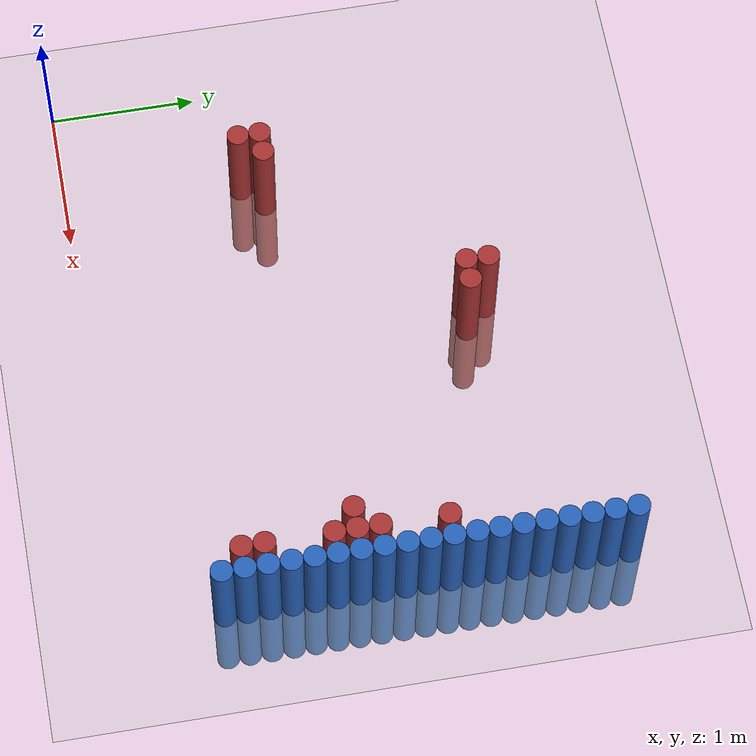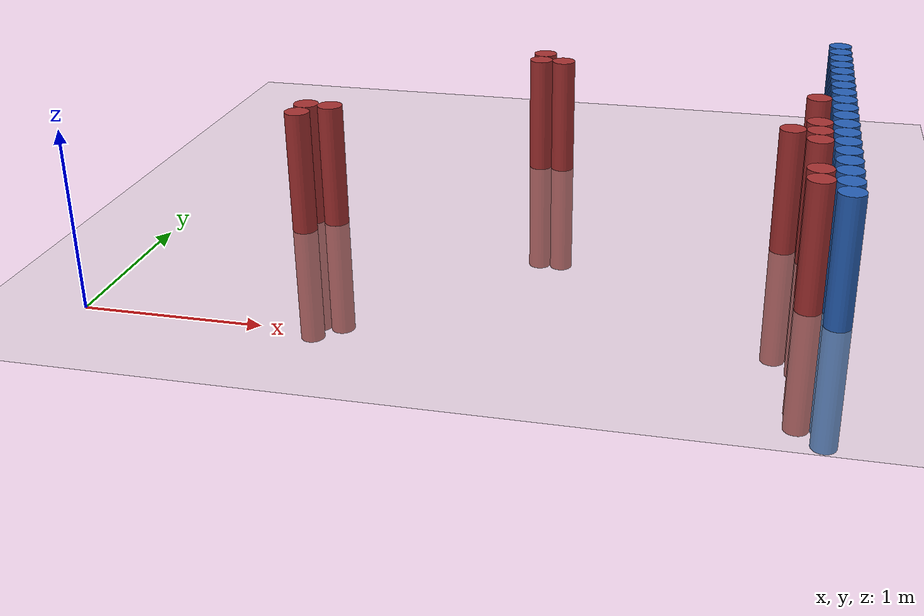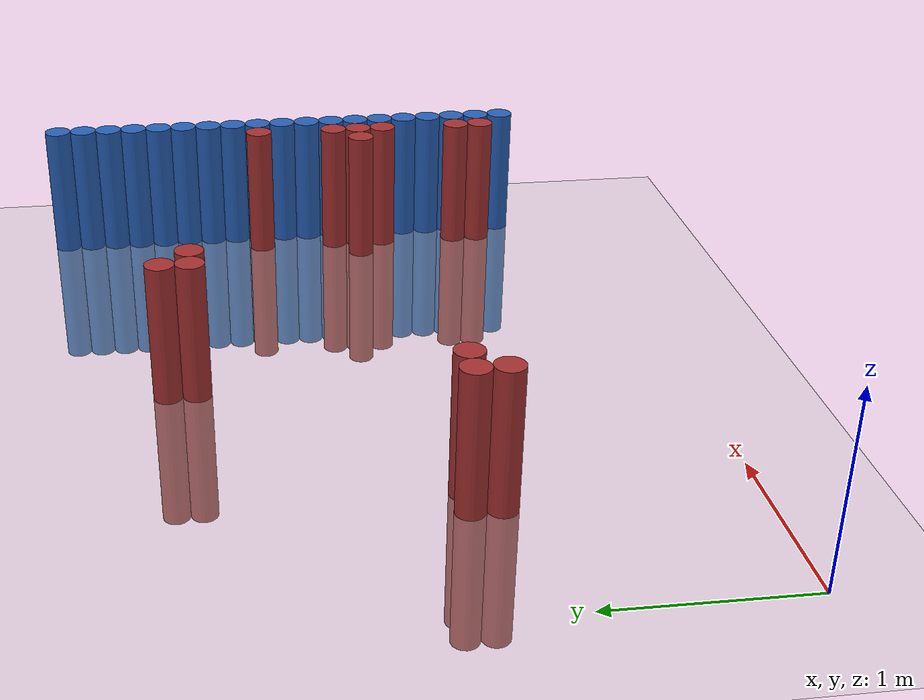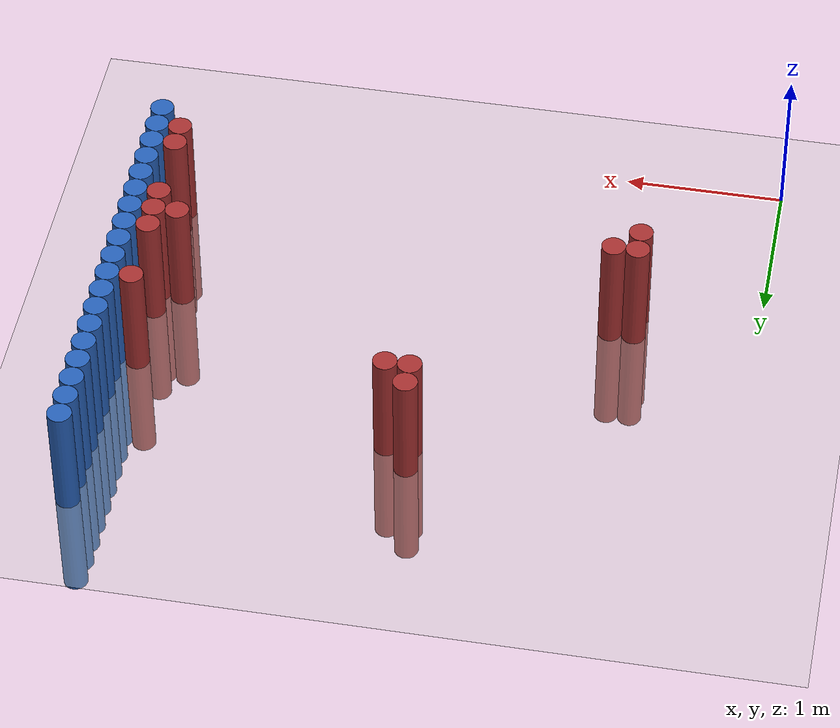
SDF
<sdf version="1.6">
 <world name="default">
  <model name="ground_plane">
   <static>1</static>
   <link name="link">
    <collision name="collision">
     <geometry><plane><normal>0 0 1</normal><size>100 100</size></plane></geometry>
     <surface><friction><ode><mu>100</mu><mu2>50</mu2></ode></friction></surface>
    </collision>
    <visual name="visual">
     <cast_shadows>0</cast_shadows>
     <geometry><plane><normal>0 0 1</normal><size>100 100</size></plane></geometry>
     <material>
      <script><uri>file://media/materials/scripts/gazebo.material</uri><name>Gazebo/Grey</name></script>
     </material>
    </visual>
   </link>
  </model>
  <model name="unit_cylinder_124">
   <static>1</static>
   <pose>3.925000 0.775000 0.000000 0.000000 0.000000 0.000000</pose>
   <link name="link">
    <inertial>
     <mass>1</mass>
     <inertia><ixx>0.145833</ixx><ixy>0</ixy><ixz>0</ixz><iyy>0.145833</iyy><iyz>0</iyz><izz>0.125</izz></inertia>
    </inertial>
    <collision name="collision">
     <geometry><cylinder><radius>0.075000</radius><length>1.5</length></cylinder></geometry>
    </collision>
    <visual name="visual">
     <geometry><cylinder><radius>0.075000</radius><length>1.5</length></cylinder></geometry>
     <material>
      <ambient>0.152000 0.379000 0.720000 1</ambient>
      <diffuse>0.152000 0.379000 0.720000 1</diffuse>
     </material>
     <material>
      <script><name>Gazebo/Grey</name><uri>file://media/materials/scripts/gazebo.material</uri></script>
     </material>
    </visual>
   </link>
  </model>
  <model name="unit_cylinder_126">
   <static>1</static>
   <pose>3.925000 0.925000 0.000000 0.000000 0.000000 0.000000</pose>
   <link name="link">
    <inertial>
     <mass>1</mass>
     <inertia><ixx>0.145833</ixx><ixy>0</ixy><ixz>0</ixz><iyy>0.145833</iyy><iyz>0</iyz><izz>0.125</izz></inertia>
    </inertial>
    <collision name="collision">
     <geometry><cylinder><radius>0.075000</radius><length>1.5</length></cylinder></geometry>
    </collision>
    <visual name="visual">
     <geometry><cylinder><radius>0.075000</radius><length>1.5</length></cylinder></geometry>
     <material>
      <ambient>0.152000 0.379000 0.720000 1</ambient>
      <diffuse>0.152000 0.379000 0.720000 1</diffuse>
     </material>
     <material>
      <script><name>Gazebo/Grey</name><uri>file://media/materials/scripts/gazebo.material</uri></script>
     </material>
    </visual>
   </link>
  </model>
  <model name="unit_cylinder_128">
   <static>1</static>
   <pose>3.925000 1.075000 0.000000 0.000000 0.000000 0.000000</pose>
   <link name="link">
    <inertial>
     <mass>1</mass>
     <inertia><ixx>0.145833</ixx><ixy>0</ixy><ixz>0</ixz><iyy>0.145833</iyy><iyz>0</iyz><izz>0.125</izz></inertia>
    </inertial>
    <collision name="collision">
     <geometry><cylinder><radius>0.075000</radius><length>1.5</length></cylinder></geometry>
    </collision>
    <visual name="visual">
     <geometry><cylinder><radius>0.075000</radius><length>1.5</length></cylinder></geometry>
     <material>
      <ambient>0.152000 0.379000 0.720000 1</ambient>
      <diffuse>0.152000 0.379000 0.720000 1</diffuse>
     </material>
     <material>
      <script><name>Gazebo/Grey</name><uri>file://media/materials/scripts/gazebo.material</uri></script>
     </material>
    </visual>
   </link>
  </model>
  <model name="unit_cylinder_130">
   <static>1</static>
   <pose>3.925000 1.225000 0.000000 0.000000 0.000000 0.000000</pose>
   <link name="link">
    <inertial>
     <mass>1</mass>
     <inertia><ixx>0.145833</ixx><ixy>0</ixy><ixz>0</ixz><iyy>0.145833</iyy><iyz>0</iyz><izz>0.125</izz></inertia>
    </inertial>
    <collision name="collision">
     <geometry><cylinder><radius>0.075000</radius><length>1.5</length></cylinder></geometry>
    </collision>
    <visual name="visual">
     <geometry><cylinder><radius>0.075000</radius><length>1.5</length></cylinder></geometry>
     <material>
      <ambient>0.152000 0.379000 0.720000 1</ambient>
      <diffuse>0.152000 0.379000 0.720000 1</diffuse>
     </material>
     <material>
      <script><name>Gazebo/Grey</name><uri>file://media/materials/scripts/gazebo.material</uri></script>
     </material>
    </visual>
   </link>
  </model>
  <model name="unit_cylinder_132">
   <static>1</static>
   <pose>3.925000 1.375000 0.000000 0.000000 0.000000 0.000000</pose>
   <link name="link">
    <inertial>
     <mass>1</mass>
     <inertia><ixx>0.145833</ixx><ixy>0</ixy><ixz>0</ixz><iyy>0.145833</iyy><iyz>0</iyz><izz>0.125</izz></inertia>
    </inertial>
    <collision name="collision">
     <geometry><cylinder><radius>0.075000</radius><length>1.5</length></cylinder></geometry>
    </collision>
    <visual name="visual">
     <geometry><cylinder><radius>0.075000</radius><length>1.5</length></cylinder></geometry>
     <material>
      <ambient>0.152000 0.379000 0.720000 1</ambient>
      <diffuse>0.152000 0.379000 0.720000 1</diffuse>
     </material>
     <material>
      <script><name>Gazebo/Grey</name><uri>file://media/materials/scripts/gazebo.material</uri></script>
     </material>
    </visual>
   </link>
  </model>
  <model name="unit_cylinder_134">
   <static>1</static>
   <pose>3.925000 1.525000 0.000000 0.000000 0.000000 0.000000</pose>
   <link name="link">
    <inertial>
     <mass>1</mass>
     <inertia><ixx>0.145833</ixx><ixy>0</ixy><ixz>0</ixz><iyy>0.145833</iyy><iyz>0</iyz><izz>0.125</izz></inertia>
    </inertial>
    <collision name="collision">
     <geometry><cylinder><radius>0.075000</radius><length>1.5</length></cylinder></geometry>
    </collision>
    <visual name="visual">
     <geometry><cylinder><radius>0.075000</radius><length>1.5</length></cylinder></geometry>
     <material>
      <ambient>0.152000 0.379000 0.720000 1</ambient>
      <diffuse>0.152000 0.379000 0.720000 1</diffuse>
     </material>
     <material>
      <script><name>Gazebo/Grey</name><uri>file://media/materials/scripts/gazebo.material</uri></script>
     </material>
    </visual>
   </link>
  </model>
  <model name="unit_cylinder_136">
   <static>1</static>
   <pose>3.925000 1.675000 0.000000 0.000000 0.000000 0.000000</pose>
   <link name="link">
    <inertial>
     <mass>1</mass>
     <inertia><ixx>0.145833</ixx><ixy>0</ixy><ixz>0</ixz><iyy>0.145833</iyy><iyz>0</iyz><izz>0.125</izz></inertia>
    </inertial>
    <collision name="collision">
     <geometry><cylinder><radius>0.075000</radius><length>1.5</length></cylinder></geometry>
    </collision>
    <visual name="visual">
     <geometry><cylinder><radius>0.075000</radius><length>1.5</length></cylinder></geometry>
     <material>
      <ambient>0.152000 0.379000 0.720000 1</ambient>
      <diffuse>0.152000 0.379000 0.720000 1</diffuse>
     </material>
     <material>
      <script><name>Gazebo/Grey</name><uri>file://media/materials/scripts/gazebo.material</uri></script>
     </material>
    </visual>
   </link>
  </model>
  <model name="unit_cylinder_138">
   <static>1</static>
   <pose>3.925000 1.825000 0.000000 0.000000 0.000000 0.000000</pose>
   <link name="link">
    <inertial>
     <mass>1</mass>
     <inertia><ixx>0.145833</ixx><ixy>0</ixy><ixz>0</ixz><iyy>0.145833</iyy><iyz>0</iyz><izz>0.125</izz></inertia>
    </inertial>
    <collision name="collision">
     <geometry><cylinder><radius>0.075000</radius><length>1.5</length></cylinder></geometry>
    </collision>
    <visual name="visual">
     <geometry><cylinder><radius>0.075000</radius><length>1.5</length></cylinder></geometry>
     <material>
      <ambient>0.152000 0.379000 0.720000 1</ambient>
      <diffuse>0.152000 0.379000 0.720000 1</diffuse>
     </material>
     <material>
      <script><name>Gazebo/Grey</name><uri>file://media/materials/scripts/gazebo.material</uri></script>
     </material>
    </visual>
   </link>
  </model>
  <model name="unit_cylinder_140">
   <static>1</static>
   <pose>3.925000 1.975000 0.000000 0.000000 0.000000 0.000000</pose>
   <link name="link">
    <inertial>
     <mass>1</mass>
     <inertia><ixx>0.145833</ixx><ixy>0</ixy><ixz>0</ixz><iyy>0.145833</iyy><iyz>0</iyz><izz>0.125</izz></inertia>
    </inertial>
    <collision name="collision">
     <geometry><cylinder><radius>0.075000</radius><length>1.5</length></cylinder></geometry>
    </collision>
    <visual name="visual">
     <geometry><cylinder><radius>0.075000</radius><length>1.5</length></cylinder></geometry>
     <material>
      <ambient>0.152000 0.379000 0.720000 1</ambient>
      <diffuse>0.152000 0.379000 0.720000 1</diffuse>
     </material>
     <material>
      <script><name>Gazebo/Grey</name><uri>file://media/materials/scripts/gazebo.material</uri></script>
     </material>
    </visual>
   </link>
  </model>
  <model name="unit_cylinder_142">
   <static>1</static>
   <pose>3.925000 2.125000 0.000000 0.000000 0.000000 0.000000</pose>
   <link name="link">
    <inertial>
     <mass>1</mass>
     <inertia><ixx>0.145833</ixx><ixy>0</ixy><ixz>0</ixz><iyy>0.145833</iyy><iyz>0</iyz><izz>0.125</izz></inertia>
    </inertial>
    <collision name="collision">
     <geometry><cylinder><radius>0.075000</radius><length>1.5</length></cylinder></geometry>
    </collision>
    <visual name="visual">
     <geometry><cylinder><radius>0.075000</radius><length>1.5</length></cylinder></geometry>
     <material>
      <ambient>0.152000 0.379000 0.720000 1</ambient>
      <diffuse>0.152000 0.379000 0.720000 1</diffuse>
     </material>
     <material>
      <script><name>Gazebo/Grey</name><uri>file://media/materials/scripts/gazebo.material</uri></script>
     </material>
    </visual>
   </link>
  </model>
  <model name="unit_cylinder_144">
   <static>1</static>
   <pose>3.925000 2.275000 0.000000 0.000000 0.000000 0.000000</pose>
   <link name="link">
    <inertial>
     <mass>1</mass>
     <inertia><ixx>0.145833</ixx><ixy>0</ixy><ixz>0</ixz><iyy>0.145833</iyy><iyz>0</iyz><izz>0.125</izz></inertia>
    </inertial>
    <collision name="collision">
     <geometry><cylinder><radius>0.075000</radius><length>1.5</length></cylinder></geometry>
    </collision>
    <visual name="visual">
     <geometry><cylinder><radius>0.075000</radius><length>1.5</length></cylinder></geometry>
     <material>
      <ambient>0.152000 0.379000 0.720000 1</ambient>
      <diffuse>0.152000 0.379000 0.720000 1</diffuse>
     </material>
     <material>
      <script><name>Gazebo/Grey</name><uri>file://media/materials/scripts/gazebo.material</uri></script>
     </material>
    </visual>
   </link>
  </model>
  <model name="unit_cylinder_146">
   <static>1</static>
   <pose>3.925000 2.425000 0.000000 0.000000 0.000000 0.000000</pose>
   <link name="link">
    <inertial>
     <mass>1</mass>
     <inertia><ixx>0.145833</ixx><ixy>0</ixy><ixz>0</ixz><iyy>0.145833</iyy><iyz>0</iyz><izz>0.125</izz></inertia>
    </inertial>
    <collision name="collision">
     <geometry><cylinder><radius>0.075000</radius><length>1.5</length></cylinder></geometry>
    </collision>
    <visual name="visual">
     <geometry><cylinder><radius>0.075000</radius><length>1.5</length></cylinder></geometry>
     <material>
      <ambient>0.152000 0.379000 0.720000 1</ambient>
      <diffuse>0.152000 0.379000 0.720000 1</diffuse>
     </material>
     <material>
      <script><name>Gazebo/Grey</name><uri>file://media/materials/scripts/gazebo.material</uri></script>
     </material>
    </visual>
   </link>
  </model>
  <model name="unit_cylinder_148">
   <static>1</static>
   <pose>3.925000 2.575000 0.000000 0.000000 0.000000 0.000000</pose>
   <link name="link">
    <inertial>
     <mass>1</mass>
     <inertia><ixx>0.145833</ixx><ixy>0</ixy><ixz>0</ixz><iyy>0.145833</iyy><iyz>0</iyz><izz>0.125</izz></inertia>
    </inertial>
    <collision name="collision">
     <geometry><cylinder><radius>0.075000</radius><length>1.5</length></cylinder></geometry>
    </collision>
    <visual name="visual">
     <geometry><cylinder><radius>0.075000</radius><length>1.5</length></cylinder></geometry>
     <material>
      <ambient>0.152000 0.379000 0.720000 1</ambient>
      <diffuse>0.152000 0.379000 0.720000 1</diffuse>
     </material>
     <material>
      <script><name>Gazebo/Grey</name><uri>file://media/materials/scripts/gazebo.material</uri></script>
     </material>
    </visual>
   </link>
  </model>
  <model name="unit_cylinder_150">
   <static>1</static>
   <pose>3.925000 2.725000 0.000000 0.000000 0.000000 0.000000</pose>
   <link name="link">
    <inertial>
     <mass>1</mass>
     <inertia><ixx>0.145833</ixx><ixy>0</ixy><ixz>0</ixz><iyy>0.145833</iyy><iyz>0</iyz><izz>0.125</izz></inertia>
    </inertial>
    <collision name="collision">
     <geometry><cylinder><radius>0.075000</radius><length>1.5</length></cylinder></geometry>
    </collision>
    <visual name="visual">
     <geometry><cylinder><radius>0.075000</radius><length>1.5</length></cylinder></geometry>
     <material>
      <ambient>0.152000 0.379000 0.720000 1</ambient>
      <diffuse>0.152000 0.379000 0.720000 1</diffuse>
     </material>
     <material>
      <script><name>Gazebo/Grey</name><uri>file://media/materials/scripts/gazebo.material</uri></script>
     </material>
    </visual>
   </link>
  </model>
  <model name="unit_cylinder_152">
   <static>1</static>
   <pose>3.925000 2.875000 0.000000 0.000000 0.000000 0.000000</pose>
   <link name="link">
    <inertial>
     <mass>1</mass>
     <inertia><ixx>0.145833</ixx><ixy>0</ixy><ixz>0</ixz><iyy>0.145833</iyy><iyz>0</iyz><izz>0.125</izz></inertia>
    </inertial>
    <collision name="collision">
     <geometry><cylinder><radius>0.075000</radius><length>1.5</length></cylinder></geometry>
    </collision>
    <visual name="visual">
     <geometry><cylinder><radius>0.075000</radius><length>1.5</length></cylinder></geometry>
     <material>
      <ambient>0.152000 0.379000 0.720000 1</ambient>
      <diffuse>0.152000 0.379000 0.720000 1</diffuse>
     </material>
     <material>
      <script><name>Gazebo/Grey</name><uri>file://media/materials/scripts/gazebo.material</uri></script>
     </material>
    </visual>
   </link>
  </model>
  <model name="unit_cylinder_154">
   <static>1</static>
   <pose>3.925000 3.025000 0.000000 0.000000 0.000000 0.000000</pose>
   <link name="link">
    <inertial>
     <mass>1</mass>
     <inertia><ixx>0.145833</ixx><ixy>0</ixy><ixz>0</ixz><iyy>0.145833</iyy><iyz>0</iyz><izz>0.125</izz></inertia>
    </inertial>
    <collision name="collision">
     <geometry><cylinder><radius>0.075000</radius><length>1.5</length></cylinder></geometry>
    </collision>
    <visual name="visual">
     <geometry><cylinder><radius>0.075000</radius><length>1.5</length></cylinder></geometry>
     <material>
      <ambient>0.152000 0.379000 0.720000 1</ambient>
      <diffuse>0.152000 0.379000 0.720000 1</diffuse>
     </material>
     <material>
      <script><name>Gazebo/Grey</name><uri>file://media/materials/scripts/gazebo.material</uri></script>
     </material>
    </visual>
   </link>
  </model>
  <model name="unit_cylinder_156">
   <static>1</static>
   <pose>3.925000 3.175000 0.000000 0.000000 0.000000 0.000000</pose>
   <link name="link">
    <inertial>
     <mass>1</mass>
     <inertia><ixx>0.145833</ixx><ixy>0</ixy><ixz>0</ixz><iyy>0.145833</iyy><iyz>0</iyz><izz>0.125</izz></inertia>
    </inertial>
    <collision name="collision">
     <geometry><cylinder><radius>0.075000</radius><length>1.5</length></cylinder></geometry>
    </collision>
    <visual name="visual">
     <geometry><cylinder><radius>0.075000</radius><length>1.5</length></cylinder></geometry>
     <material>
      <ambient>0.152000 0.379000 0.720000 1</ambient>
      <diffuse>0.152000 0.379000 0.720000 1</diffuse>
     </material>
     <material>
      <script><name>Gazebo/Grey</name><uri>file://media/materials/scripts/gazebo.material</uri></script>
     </material>
    </visual>
   </link>
  </model>
  <model name="unit_cylinder_158">
   <static>1</static>
   <pose>3.925000 3.325000 0.000000 0.000000 0.000000 0.000000</pose>
   <link name="link">
    <inertial>
     <mass>1</mass>
     <inertia><ixx>0.145833</ixx><ixy>0</ixy><ixz>0</ixz><iyy>0.145833</iyy><iyz>0</iyz><izz>0.125</izz></inertia>
    </inertial>
    <collision name="collision">
     <geometry><cylinder><radius>0.075000</radius><length>1.5</length></cylinder></geometry>
    </collision>
    <visual name="visual">
     <geometry><cylinder><radius>0.075000</radius><length>1.5</length></cylinder></geometry>
     <material>
      <ambient>0.152000 0.379000 0.720000 1</ambient>
      <diffuse>0.152000 0.379000 0.720000 1</diffuse>
     </material>
     <material>
      <script><name>Gazebo/Grey</name><uri>file://media/materials/scripts/gazebo.material</uri></script>
     </material>
    </visual>
   </link>
  </model>
  <model name="unit_cylinder_298">
   <static>1</static>
   <pose>0.775000 1.225000 0.000000 0.000000 0.000000 0.000000</pose>
   <link name="link">
    <inertial>
     <mass>1</mass>
     <inertia><ixx>0.145833</ixx><ixy>0</ixy><ixz>0</ixz><iyy>0.145833</iyy><iyz>0</iyz><izz>0.125</izz></inertia>
    </inertial>
    <collision name="collision">
     <geometry><cylinder><radius>0.075000</radius><length>1.5</length></cylinder></geometry>
    </collision>
    <visual name="visual">
     <geometry><cylinder><radius>0.075000</radius><length>1.5</length></cylinder></geometry>
     <material>
      <ambient>0.648000 0.192000 0.192000 1</ambient>
      <diffuse>0.648000 0.192000 0.192000 1</diffuse>
     </material>
     <material>
      <script><name>Gazebo/Grey</name><uri>file://media/materials/scripts/gazebo.material</uri></script>
     </material>
    </visual>
   </link>
  </model>
  <model name="unit_cylinder_299">
   <static>1</static>
   <pose>0.775000 1.375000 0.000000 0.000000 0.000000 0.000000</pose>
   <link name="link">
    <inertial>
     <mass>1</mass>
     <inertia><ixx>0.145833</ixx><ixy>0</ixy><ixz>0</ixz><iyy>0.145833</iyy><iyz>0</iyz><izz>0.125</izz></inertia>
    </inertial>
    <collision name="collision">
     <geometry><cylinder><radius>0.075000</radius><length>1.5</length></cylinder></geometry>
    </collision>
    <visual name="visual">
     <geometry><cylinder><radius>0.075000</radius><length>1.5</length></cylinder></geometry>
     <material>
      <ambient>0.648000 0.192000 0.192000 1</ambient>
      <diffuse>0.648000 0.192000 0.192000 1</diffuse>
     </material>
     <material>
      <script><name>Gazebo/Grey</name><uri>file://media/materials/scripts/gazebo.material</uri></script>
     </material>
    </visual>
   </link>
  </model>
  <model name="unit_cylinder_300">
   <static>1</static>
   <pose>0.925000 1.375000 0.000000 0.000000 0.000000 0.000000</pose>
   <link name="link">
    <inertial>
     <mass>1</mass>
     <inertia><ixx>0.145833</ixx><ixy>0</ixy><ixz>0</ixz><iyy>0.145833</iyy><iyz>0</iyz><izz>0.125</izz></inertia>
    </inertial>
    <collision name="collision">
     <geometry><cylinder><radius>0.075000</radius><length>1.5</length></cylinder></geometry>
    </collision>
    <visual name="visual">
     <geometry><cylinder><radius>0.075000</radius><length>1.5</length></cylinder></geometry>
     <material>
      <ambient>0.648000 0.192000 0.192000 1</ambient>
      <diffuse>0.648000 0.192000 0.192000 1</diffuse>
     </material>
     <material>
      <script><name>Gazebo/Grey</name><uri>file://media/materials/scripts/gazebo.material</uri></script>
     </material>
    </visual>
   </link>
  </model>
  <model name="unit_cylinder_309">
   <static>1</static>
   <pose>1.975000 2.575000 0.000000 0.000000 0.000000 0.000000</pose>
   <link name="link">
    <inertial>
     <mass>1</mass>
     <inertia><ixx>0.145833</ixx><ixy>0</ixy><ixz>0</ixz><iyy>0.145833</iyy><iyz>0</iyz><izz>0.125</izz></inertia>
    </inertial>
    <collision name="collision">
     <geometry><cylinder><radius>0.075000</radius><length>1.5</length></cylinder></geometry>
    </collision>
    <visual name="visual">
     <geometry><cylinder><radius>0.075000</radius><length>1.5</length></cylinder></geometry>
     <material>
      <ambient>0.648000 0.192000 0.192000 1</ambient>
      <diffuse>0.648000 0.192000 0.192000 1</diffuse>
     </material>
     <material>
      <script><name>Gazebo/Grey</name><uri>file://media/materials/scripts/gazebo.material</uri></script>
     </material>
    </visual>
   </link>
  </model>
  <model name="unit_cylinder_310">
   <static>1</static>
   <pose>1.975000 2.725000 0.000000 0.000000 0.000000 0.000000</pose>
   <link name="link">
    <inertial>
     <mass>1</mass>
     <inertia><ixx>0.145833</ixx><ixy>0</ixy><ixz>0</ixz><iyy>0.145833</iyy><iyz>0</iyz><izz>0.125</izz></inertia>
    </inertial>
    <collision name="collision">
     <geometry><cylinder><radius>0.075000</radius><length>1.5</length></cylinder></geometry>
    </collision>
    <visual name="visual">
     <geometry><cylinder><radius>0.075000</radius><length>1.5</length></cylinder></geometry>
     <material>
      <ambient>0.648000 0.192000 0.192000 1</ambient>
      <diffuse>0.648000 0.192000 0.192000 1</diffuse>
     </material>
     <material>
      <script><name>Gazebo/Grey</name><uri>file://media/materials/scripts/gazebo.material</uri></script>
     </material>
    </visual>
   </link>
  </model>
  <model name="unit_cylinder_311">
   <static>1</static>
   <pose>2.125000 2.575000 0.000000 0.000000 0.000000 0.000000</pose>
   <link name="link">
    <inertial>
     <mass>1</mass>
     <inertia><ixx>0.145833</ixx><ixy>0</ixy><ixz>0</ixz><iyy>0.145833</iyy><iyz>0</iyz><izz>0.125</izz></inertia>
    </inertial>
    <collision name="collision">
     <geometry><cylinder><radius>0.075000</radius><length>1.5</length></cylinder></geometry>
    </collision>
    <visual name="visual">
     <geometry><cylinder><radius>0.075000</radius><length>1.5</length></cylinder></geometry>
     <material>
      <ambient>0.648000 0.192000 0.192000 1</ambient>
      <diffuse>0.648000 0.192000 0.192000 1</diffuse>
     </material>
     <material>
      <script><name>Gazebo/Grey</name><uri>file://media/materials/scripts/gazebo.material</uri></script>
     </material>
    </visual>
   </link>
  </model>
  <model name="unit_cylinder_319">
   <static>1</static>
   <pose>3.625000 1.525000 0.000000 0.000000 0.000000 0.000000</pose>
   <link name="link">
    <inertial>
     <mass>1</mass>
     <inertia><ixx>0.145833</ixx><ixy>0</ixy><ixz>0</ixz><iyy>0.145833</iyy><iyz>0</iyz><izz>0.125</izz></inertia>
    </inertial>
    <collision name="collision">
     <geometry><cylinder><radius>0.075000</radius><length>1.5</length></cylinder></geometry>
    </collision>
    <visual name="visual">
     <geometry><cylinder><radius>0.075000</radius><length>1.5</length></cylinder></geometry>
     <material>
      <ambient>0.648000 0.192000 0.192000 1</ambient>
      <diffuse>0.648000 0.192000 0.192000 1</diffuse>
     </material>
     <material>
      <script><name>Gazebo/Grey</name><uri>file://media/materials/scripts/gazebo.material</uri></script>
     </material>
    </visual>
   </link>
  </model>
  <model name="unit_cylinder_327">
   <static>1</static>
   <pose>3.775000 0.775000 0.000000 0.000000 0.000000 0.000000</pose>
   <link name="link">
    <inertial>
     <mass>1</mass>
     <inertia><ixx>0.145833</ixx><ixy>0</ixy><ixz>0</ixz><iyy>0.145833</iyy><iyz>0</iyz><izz>0.125</izz></inertia>
    </inertial>
    <collision name="collision">
     <geometry><cylinder><radius>0.075000</radius><length>1.5</length></cylinder></geometry>
    </collision>
    <visual name="visual">
     <geometry><cylinder><radius>0.075000</radius><length>1.5</length></cylinder></geometry>
     <material>
      <ambient>0.648000 0.192000 0.192000 1</ambient>
      <diffuse>0.648000 0.192000 0.192000 1</diffuse>
     </material>
     <material>
      <script><name>Gazebo/Grey</name><uri>file://media/materials/scripts/gazebo.material</uri></script>
     </material>
    </visual>
   </link>
  </model>
  <model name="unit_cylinder_328">
   <static>1</static>
   <pose>3.775000 0.925000 0.000000 0.000000 0.000000 0.000000</pose>
   <link name="link">
    <inertial>
     <mass>1</mass>
     <inertia><ixx>0.145833</ixx><ixy>0</ixy><ixz>0</ixz><iyy>0.145833</iyy><iyz>0</iyz><izz>0.125</izz></inertia>
    </inertial>
    <collision name="collision">
     <geometry><cylinder><radius>0.075000</radius><length>1.5</length></cylinder></geometry>
    </collision>
    <visual name="visual">
     <geometry><cylinder><radius>0.075000</radius><length>1.5</length></cylinder></geometry>
     <material>
      <ambient>0.648000 0.192000 0.192000 1</ambient>
      <diffuse>0.648000 0.192000 0.192000 1</diffuse>
     </material>
     <material>
      <script><name>Gazebo/Grey</name><uri>file://media/materials/scripts/gazebo.material</uri></script>
     </material>
    </visual>
   </link>
  </model>
  <model name="unit_cylinder_329">
   <static>1</static>
   <pose>3.775000 1.375000 0.000000 0.000000 0.000000 0.000000</pose>
   <link name="link">
    <inertial>
     <mass>1</mass>
     <inertia><ixx>0.145833</ixx><ixy>0</ixy><ixz>0</ixz><iyy>0.145833</iyy><iyz>0</iyz><izz>0.125</izz></inertia>
    </inertial>
    <collision name="collision">
     <geometry><cylinder><radius>0.075000</radius><length>1.5</length></cylinder></geometry>
    </collision>
    <visual name="visual">
     <geometry><cylinder><radius>0.075000</radius><length>1.5</length></cylinder></geometry>
     <material>
      <ambient>0.648000 0.192000 0.192000 1</ambient>
      <diffuse>0.648000 0.192000 0.192000 1</diffuse>
     </material>
     <material>
      <script><name>Gazebo/Grey</name><uri>file://media/materials/scripts/gazebo.material</uri></script>
     </material>
    </visual>
   </link>
  </model>
  <model name="unit_cylinder_330">
   <static>1</static>
   <pose>3.775000 1.525000 0.000000 0.000000 0.000000 0.000000</pose>
   <link name="link">
    <inertial>
     <mass>1</mass>
     <inertia><ixx>0.145833</ixx><ixy>0</ixy><ixz>0</ixz><iyy>0.145833</iyy><iyz>0</iyz><izz>0.125</izz></inertia>
    </inertial>
    <collision name="collision">
     <geometry><cylinder><radius>0.075000</radius><length>1.5</length></cylinder></geometry>
    </collision>
    <visual name="visual">
     <geometry><cylinder><radius>0.075000</radius><length>1.5</length></cylinder></geometry>
     <material>
      <ambient>0.648000 0.192000 0.192000 1</ambient>
      <diffuse>0.648000 0.192000 0.192000 1</diffuse>
     </material>
     <material>
      <script><name>Gazebo/Grey</name><uri>file://media/materials/scripts/gazebo.material</uri></script>
     </material>
    </visual>
   </link>
  </model>
  <model name="unit_cylinder_331">
   <static>1</static>
   <pose>3.775000 1.675000 0.000000 0.000000 0.000000 0.000000</pose>
   <link name="link">
    <inertial>
     <mass>1</mass>
     <inertia><ixx>0.145833</ixx><ixy>0</ixy><ixz>0</ixz><iyy>0.145833</iyy><iyz>0</iyz><izz>0.125</izz></inertia>
    </inertial>
    <collision name="collision">
     <geometry><cylinder><radius>0.075000</radius><length>1.5</length></cylinder></geometry>
    </collision>
    <visual name="visual">
     <geometry><cylinder><radius>0.075000</radius><length>1.5</length></cylinder></geometry>
     <material>
      <ambient>0.648000 0.192000 0.192000 1</ambient>
      <diffuse>0.648000 0.192000 0.192000 1</diffuse>
     </material>
     <material>
      <script><name>Gazebo/Grey</name><uri>file://media/materials/scripts/gazebo.material</uri></script>
     </material>
    </visual>
   </link>
  </model>
  <model name="unit_cylinder_332">
   <static>1</static>
   <pose>3.775000 2.125000 0.000000 0.000000 0.000000 0.000000</pose>
   <link name="link">
    <inertial>
     <mass>1</mass>
     <inertia><ixx>0.145833</ixx><ixy>0</ixy><ixz>0</ixz><iyy>0.145833</iyy><iyz>0</iyz><izz>0.125</izz></inertia>
    </inertial>
    <collision name="collision">
     <geometry><cylinder><radius>0.075000</radius><length>1.5</length></cylinder></geometry>
    </collision>
    <visual name="visual">
     <geometry><cylinder><radius>0.075000</radius><length>1.5</length></cylinder></geometry>
     <material>
      <ambient>0.648000 0.192000 0.192000 1</ambient>
      <diffuse>0.648000 0.192000 0.192000 1</diffuse>
     </material>
     <material>
      <script><name>Gazebo/Grey</name><uri>file://media/materials/scripts/gazebo.material</uri></script>
     </material>
    </visual>
   </link>
  </model>
  <model name="unit_cylinder_356">
   <static>1</static>
   <pose>3.925000 0.625000 0.000000 0.000000 0.000000 0.000000</pose>
   <link name="link">
    <inertial>
     <mass>1</mass>
     <inertia><ixx>0.145833</ixx><ixy>0</ixy><ixz>0</ixz><iyy>0.145833</iyy><iyz>0</iyz><izz>0.125</izz></inertia>
    </inertial>
    <collision name="collision">
     <geometry><cylinder><radius>0.075000</radius><length>1.5</length></cylinder></geometry>
    </collision>
    <visual name="visual">
     <geometry><cylinder><radius>0.075000</radius><length>1.5</length></cylinder></geometry>
     <material>
      <ambient>0.152000 0.379000 0.720000 1</ambient>
      <diffuse>0.152000 0.379000 0.720000 1</diffuse>
     </material>
     <material>
      <script><name>Gazebo/Grey</name><uri>file://media/materials/scripts/gazebo.material</uri></script>
     </material>
    </visual>
   </link>
  </model>
  <model name="unit_cylinder_357">
   <static>1</static>
   <pose>3.925000 0.775000 0.000000 0.000000 0.000000 0.000000</pose>
   <link name="link">
    <inertial>
     <mass>1</mass>
     <inertia><ixx>0.145833</ixx><ixy>0</ixy><ixz>0</ixz><iyy>0.145833</iyy><iyz>0</iyz><izz>0.125</izz></inertia>
    </inertial>
    <collision name="collision">
     <geometry><cylinder><radius>0.075000</radius><length>1.5</length></cylinder></geometry>
    </collision>
    <visual name="visual">
     <geometry><cylinder><radius>0.075000</radius><length>1.5</length></cylinder></geometry>
     <material>
      <ambient>0.152000 0.379000 0.720000 1</ambient>
      <diffuse>0.152000 0.379000 0.720000 1</diffuse>
     </material>
     <material>
      <script><name>Gazebo/Grey</name><uri>file://media/materials/scripts/gazebo.material</uri></script>
     </material>
    </visual>
   </link>
  </model>
  <model name="unit_cylinder_358">
   <static>1</static>
   <pose>3.925000 0.925000 0.000000 0.000000 0.000000 0.000000</pose>
   <link name="link">
    <inertial>
     <mass>1</mass>
     <inertia><ixx>0.145833</ixx><ixy>0</ixy><ixz>0</ixz><iyy>0.145833</iyy><iyz>0</iyz><izz>0.125</izz></inertia>
    </inertial>
    <collision name="collision">
     <geometry><cylinder><radius>0.075000</radius><length>1.5</length></cylinder></geometry>
    </collision>
    <visual name="visual">
     <geometry><cylinder><radius>0.075000</radius><length>1.5</length></cylinder></geometry>
     <material>
      <ambient>0.152000 0.379000 0.720000 1</ambient>
      <diffuse>0.152000 0.379000 0.720000 1</diffuse>
     </material>
     <material>
      <script><name>Gazebo/Grey</name><uri>file://media/materials/scripts/gazebo.material</uri></script>
     </material>
    </visual>
   </link>
  </model>
  <model name="unit_cylinder_359">
   <static>1</static>
   <pose>3.925000 1.075000 0.000000 0.000000 0.000000 0.000000</pose>
   <link name="link">
    <inertial>
     <mass>1</mass>
     <inertia><ixx>0.145833</ixx><ixy>0</ixy><ixz>0</ixz><iyy>0.145833</iyy><iyz>0</iyz><izz>0.125</izz></inertia>
    </inertial>
    <collision name="collision">
     <geometry><cylinder><radius>0.075000</radius><length>1.5</length></cylinder></geometry>
    </collision>
    <visual name="visual">
     <geometry><cylinder><radius>0.075000</radius><length>1.5</length></cylinder></geometry>
     <material>
      <ambient>0.152000 0.379000 0.720000 1</ambient>
      <diffuse>0.152000 0.379000 0.720000 1</diffuse>
     </material>
     <material>
      <script><name>Gazebo/Grey</name><uri>file://media/materials/scripts/gazebo.material</uri></script>
     </material>
    </visual>
   </link>
  </model>
  <model name="unit_cylinder_360">
   <static>1</static>
   <pose>3.925000 1.225000 0.000000 0.000000 0.000000 0.000000</pose>
   <link name="link">
    <inertial>
     <mass>1</mass>
     <inertia><ixx>0.145833</ixx><ixy>0</ixy><ixz>0</ixz><iyy>0.145833</iyy><iyz>0</iyz><izz>0.125</izz></inertia>
    </inertial>
    <collision name="collision">
     <geometry><cylinder><radius>0.075000</radius><length>1.5</length></cylinder></geometry>
    </collision>
    <visual name="visual">
     <geometry><cylinder><radius>0.075000</radius><length>1.5</length></cylinder></geometry>
     <material>
      <ambient>0.152000 0.379000 0.720000 1</ambient>
      <diffuse>0.152000 0.379000 0.720000 1</diffuse>
     </material>
     <material>
      <script><name>Gazebo/Grey</name><uri>file://media/materials/scripts/gazebo.material</uri></script>
     </material>
    </visual>
   </link>
  </model>
  <model name="unit_cylinder_361">
   <static>1</static>
   <pose>3.925000 1.375000 0.000000 0.000000 0.000000 0.000000</pose>
   <link name="link">
    <inertial>
     <mass>1</mass>
     <inertia><ixx>0.145833</ixx><ixy>0</ixy><ixz>0</ixz><iyy>0.145833</iyy><iyz>0</iyz><izz>0.125</izz></inertia>
    </inertial>
    <collision name="collision">
     <geometry><cylinder><radius>0.075000</radius><length>1.5</length></cylinder></geometry>
    </collision>
    <visual name="visual">
     <geometry><cylinder><radius>0.075000</radius><length>1.5</length></cylinder></geometry>
     <material>
      <ambient>0.152000 0.379000 0.720000 1</ambient>
      <diffuse>0.152000 0.379000 0.720000 1</diffuse>
     </material>
     <material>
      <script><name>Gazebo/Grey</name><uri>file://media/materials/scripts/gazebo.material</uri></script>
     </material>
    </visual>
   </link>
  </model>
  <model name="unit_cylinder_362">
   <static>1</static>
   <pose>3.925000 1.525000 0.000000 0.000000 0.000000 0.000000</pose>
   <link name="link">
    <inertial>
     <mass>1</mass>
     <inertia><ixx>0.145833</ixx><ixy>0</ixy><ixz>0</ixz><iyy>0.145833</iyy><iyz>0</iyz><izz>0.125</izz></inertia>
    </inertial>
    <collision name="collision">
     <geometry><cylinder><radius>0.075000</radius><length>1.5</length></cylinder></geometry>
    </collision>
    <visual name="visual">
     <geometry><cylinder><radius>0.075000</radius><length>1.5</length></cylinder></geometry>
     <material>
      <ambient>0.152000 0.379000 0.720000 1</ambient>
      <diffuse>0.152000 0.379000 0.720000 1</diffuse>
     </material>
     <material>
      <script><name>Gazebo/Grey</name><uri>file://media/materials/scripts/gazebo.material</uri></script>
     </material>
    </visual>
   </link>
  </model>
  <model name="unit_cylinder_363">
   <static>1</static>
   <pose>3.925000 1.675000 0.000000 0.000000 0.000000 0.000000</pose>
   <link name="link">
    <inertial>
     <mass>1</mass>
     <inertia><ixx>0.145833</ixx><ixy>0</ixy><ixz>0</ixz><iyy>0.145833</iyy><iyz>0</iyz><izz>0.125</izz></inertia>
    </inertial>
    <collision name="collision">
     <geometry><cylinder><radius>0.075000</radius><length>1.5</length></cylinder></geometry>
    </collision>
    <visual name="visual">
     <geometry><cylinder><radius>0.075000</radius><length>1.5</length></cylinder></geometry>
     <material>
      <ambient>0.152000 0.379000 0.720000 1</ambient>
      <diffuse>0.152000 0.379000 0.720000 1</diffuse>
     </material>
     <material>
      <script><name>Gazebo/Grey</name><uri>file://media/materials/scripts/gazebo.material</uri></script>
     </material>
    </visual>
   </link>
  </model>
  <model name="unit_cylinder_364">
   <static>1</static>
   <pose>3.925000 1.825000 0.000000 0.000000 0.000000 0.000000</pose>
   <link name="link">
    <inertial>
     <mass>1</mass>
     <inertia><ixx>0.145833</ixx><ixy>0</ixy><ixz>0</ixz><iyy>0.145833</iyy><iyz>0</iyz><izz>0.125</izz></inertia>
    </inertial>
    <collision name="collision">
     <geometry><cylinder><radius>0.075000</radius><length>1.5</length></cylinder></geometry>
    </collision>
    <visual name="visual">
     <geometry><cylinder><radius>0.075000</radius><length>1.5</length></cylinder></geometry>
     <material>
      <ambient>0.152000 0.379000 0.720000 1</ambient>
      <diffuse>0.152000 0.379000 0.720000 1</diffuse>
     </material>
     <material>
      <script><name>Gazebo/Grey</name><uri>file://media/materials/scripts/gazebo.material</uri></script>
     </material>
    </visual>
   </link>
  </model>
  <model name="unit_cylinder_365">
   <static>1</static>
   <pose>3.925000 1.975000 0.000000 0.000000 0.000000 0.000000</pose>
   <link name="link">
    <inertial>
     <mass>1</mass>
     <inertia><ixx>0.145833</ixx><ixy>0</ixy><ixz>0</ixz><iyy>0.145833</iyy><iyz>0</iyz><izz>0.125</izz></inertia>
    </inertial>
    <collision name="collision">
     <geometry><cylinder><radius>0.075000</radius><length>1.5</length></cylinder></geometry>
    </collision>
    <visual name="visual">
     <geometry><cylinder><radius>0.075000</radius><length>1.5</length></cylinder></geometry>
     <material>
      <ambient>0.152000 0.379000 0.720000 1</ambient>
      <diffuse>0.152000 0.379000 0.720000 1</diffuse>
     </material>
     <material>
      <script><name>Gazebo/Grey</name><uri>file://media/materials/scripts/gazebo.material</uri></script>
     </material>
    </visual>
   </link>
  </model>
  <model name="unit_cylinder_366">
   <static>1</static>
   <pose>3.925000 2.125000 0.000000 0.000000 0.000000 0.000000</pose>
   <link name="link">
    <inertial>
     <mass>1</mass>
     <inertia><ixx>0.145833</ixx><ixy>0</ixy><ixz>0</ixz><iyy>0.145833</iyy><iyz>0</iyz><izz>0.125</izz></inertia>
    </inertial>
    <collision name="collision">
     <geometry><cylinder><radius>0.075000</radius><length>1.5</length></cylinder></geometry>
    </collision>
    <visual name="visual">
     <geometry><cylinder><radius>0.075000</radius><length>1.5</length></cylinder></geometry>
     <material>
      <ambient>0.152000 0.379000 0.720000 1</ambient>
      <diffuse>0.152000 0.379000 0.720000 1</diffuse>
     </material>
     <material>
      <script><name>Gazebo/Grey</name><uri>file://media/materials/scripts/gazebo.material</uri></script>
     </material>
    </visual>
   </link>
  </model>
  <model name="unit_cylinder_367">
   <static>1</static>
   <pose>3.925000 2.275000 0.000000 0.000000 0.000000 0.000000</pose>
   <link name="link">
    <inertial>
     <mass>1</mass>
     <inertia><ixx>0.145833</ixx><ixy>0</ixy><ixz>0</ixz><iyy>0.145833</iyy><iyz>0</iyz><izz>0.125</izz></inertia>
    </inertial>
    <collision name="collision">
     <geometry><cylinder><radius>0.075000</radius><length>1.5</length></cylinder></geometry>
    </collision>
    <visual name="visual">
     <geometry><cylinder><radius>0.075000</radius><length>1.5</length></cylinder></geometry>
     <material>
      <ambient>0.152000 0.379000 0.720000 1</ambient>
      <diffuse>0.152000 0.379000 0.720000 1</diffuse>
     </material>
     <material>
      <script><name>Gazebo/Grey</name><uri>file://media/materials/scripts/gazebo.material</uri></script>
     </material>
    </visual>
   </link>
  </model>
  <model name="unit_cylinder_368">
   <static>1</static>
   <pose>3.925000 2.425000 0.000000 0.000000 0.000000 0.000000</pose>
   <link name="link">
    <inertial>
     <mass>1</mass>
     <inertia><ixx>0.145833</ixx><ixy>0</ixy><ixz>0</ixz><iyy>0.145833</iyy><iyz>0</iyz><izz>0.125</izz></inertia>
    </inertial>
    <collision name="collision">
     <geometry><cylinder><radius>0.075000</radius><length>1.5</length></cylinder></geometry>
    </collision>
    <visual name="visual">
     <geometry><cylinder><radius>0.075000</radius><length>1.5</length></cylinder></geometry>
     <material>
      <ambient>0.152000 0.379000 0.720000 1</ambient>
      <diffuse>0.152000 0.379000 0.720000 1</diffuse>
     </material>
     <material>
      <script><name>Gazebo/Grey</name><uri>file://media/materials/scripts/gazebo.material</uri></script>
     </material>
    </visual>
   </link>
  </model>
  <model name="unit_cylinder_369">
   <static>1</static>
   <pose>3.925000 2.575000 0.000000 0.000000 0.000000 0.000000</pose>
   <link name="link">
    <inertial>
     <mass>1</mass>
     <inertia><ixx>0.145833</ixx><ixy>0</ixy><ixz>0</ixz><iyy>0.145833</iyy><iyz>0</iyz><izz>0.125</izz></inertia>
    </inertial>
    <collision name="collision">
     <geometry><cylinder><radius>0.075000</radius><length>1.5</length></cylinder></geometry>
    </collision>
    <visual name="visual">
     <geometry><cylinder><radius>0.075000</radius><length>1.5</length></cylinder></geometry>
     <material>
      <ambient>0.152000 0.379000 0.720000 1</ambient>
      <diffuse>0.152000 0.379000 0.720000 1</diffuse>
     </material>
     <material>
      <script><name>Gazebo/Grey</name><uri>file://media/materials/scripts/gazebo.material</uri></script>
     </material>
    </visual>
   </link>
  </model>
  <model name="unit_cylinder_370">
   <static>1</static>
   <pose>3.925000 2.725000 0.000000 0.000000 0.000000 0.000000</pose>
   <link name="link">
    <inertial>
     <mass>1</mass>
     <inertia><ixx>0.145833</ixx><ixy>0</ixy><ixz>0</ixz><iyy>0.145833</iyy><iyz>0</iyz><izz>0.125</izz></inertia>
    </inertial>
    <collision name="collision">
     <geometry><cylinder><radius>0.075000</radius><length>1.5</length></cylinder></geometry>
    </collision>
    <visual name="visual">
     <geometry><cylinder><radius>0.075000</radius><length>1.5</length></cylinder></geometry>
     <material>
      <ambient>0.152000 0.379000 0.720000 1</ambient>
      <diffuse>0.152000 0.379000 0.720000 1</diffuse>
     </material>
     <material>
      <script><name>Gazebo/Grey</name><uri>file://media/materials/scripts/gazebo.material</uri></script>
     </material>
    </visual>
   </link>
  </model>
  <model name="unit_cylinder_371">
   <static>1</static>
   <pose>3.925000 2.875000 0.000000 0.000000 0.000000 0.000000</pose>
   <link name="link">
    <inertial>
     <mass>1</mass>
     <inertia><ixx>0.145833</ixx><ixy>0</ixy><ixz>0</ixz><iyy>0.145833</iyy><iyz>0</iyz><izz>0.125</izz></inertia>
    </inertial>
    <collision name="collision">
     <geometry><cylinder><radius>0.075000</radius><length>1.5</length></cylinder></geometry>
    </collision>
    <visual name="visual">
     <geometry><cylinder><radius>0.075000</radius><length>1.5</length></cylinder></geometry>
     <material>
      <ambient>0.152000 0.379000 0.720000 1</ambient>
      <diffuse>0.152000 0.379000 0.720000 1</diffuse>
     </material>
     <material>
      <script><name>Gazebo/Grey</name><uri>file://media/materials/scripts/gazebo.material</uri></script>
     </material>
    </visual>
   </link>
  </model>
  <model name="unit_cylinder_372">
   <static>1</static>
   <pose>3.925000 3.025000 0.000000 0.000000 0.000000 0.000000</pose>
   <link name="link">
    <inertial>
     <mass>1</mass>
     <inertia><ixx>0.145833</ixx><ixy>0</ixy><ixz>0</ixz><iyy>0.145833</iyy><iyz>0</iyz><izz>0.125</izz></inertia>
    </inertial>
    <collision name="collision">
     <geometry><cylinder><radius>0.075000</radius><length>1.5</length></cylinder></geometry>
    </collision>
    <visual name="visual">
     <geometry><cylinder><radius>0.075000</radius><length>1.5</length></cylinder></geometry>
     <material>
      <ambient>0.152000 0.379000 0.720000 1</ambient>
      <diffuse>0.152000 0.379000 0.720000 1</diffuse>
     </material>
     <material>
      <script><name>Gazebo/Grey</name><uri>file://media/materials/scripts/gazebo.material</uri></script>
     </material>
    </visual>
   </link>
  </model>
  <model name="unit_cylinder_373">
   <static>1</static>
   <pose>3.925000 3.175000 0.000000 0.000000 0.000000 0.000000</pose>
   <link name="link">
    <inertial>
     <mass>1</mass>
     <inertia><ixx>0.145833</ixx><ixy>0</ixy><ixz>0</ixz><iyy>0.145833</iyy><iyz>0</iyz><izz>0.125</izz></inertia>
    </inertial>
    <collision name="collision">
     <geometry><cylinder><radius>0.075000</radius><length>1.5</length></cylinder></geometry>
    </collision>
    <visual name="visual">
     <geometry><cylinder><radius>0.075000</radius><length>1.5</length></cylinder></geometry>
     <material>
      <ambient>0.152000 0.379000 0.720000 1</ambient>
      <diffuse>0.152000 0.379000 0.720000 1</diffuse>
     </material>
     <material>
      <script><name>Gazebo/Grey</name><uri>file://media/materials/scripts/gazebo.material</uri></script>
     </material>
    </visual>
   </link>
  </model>
 </world>
</sdf>
